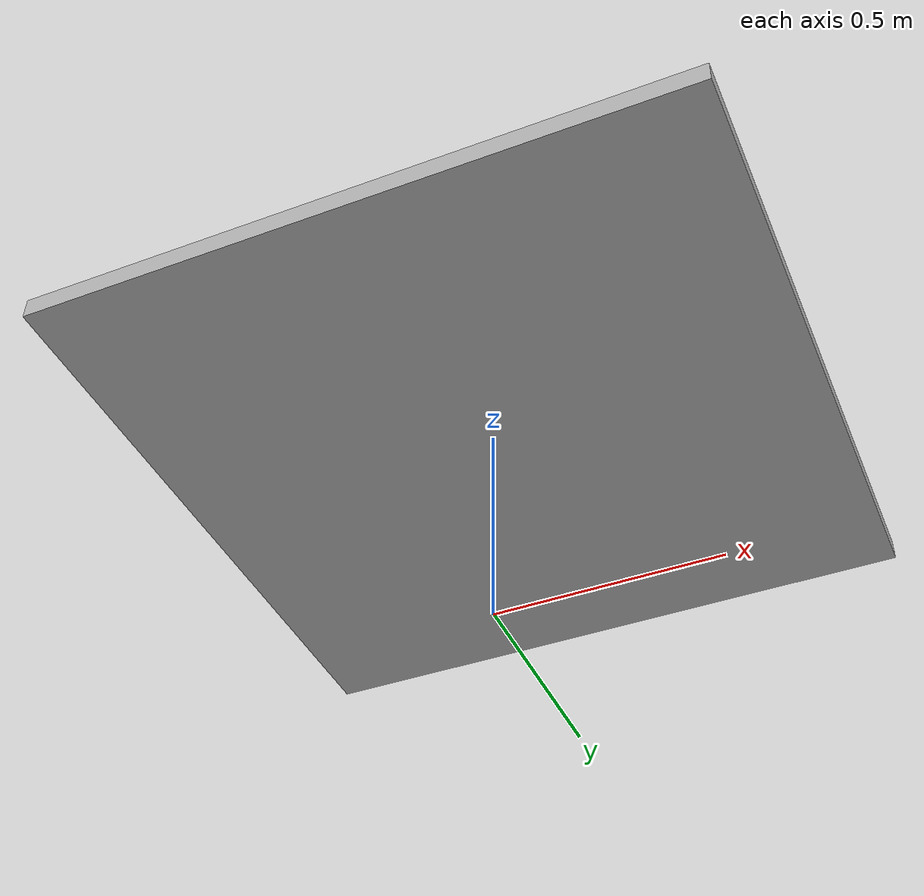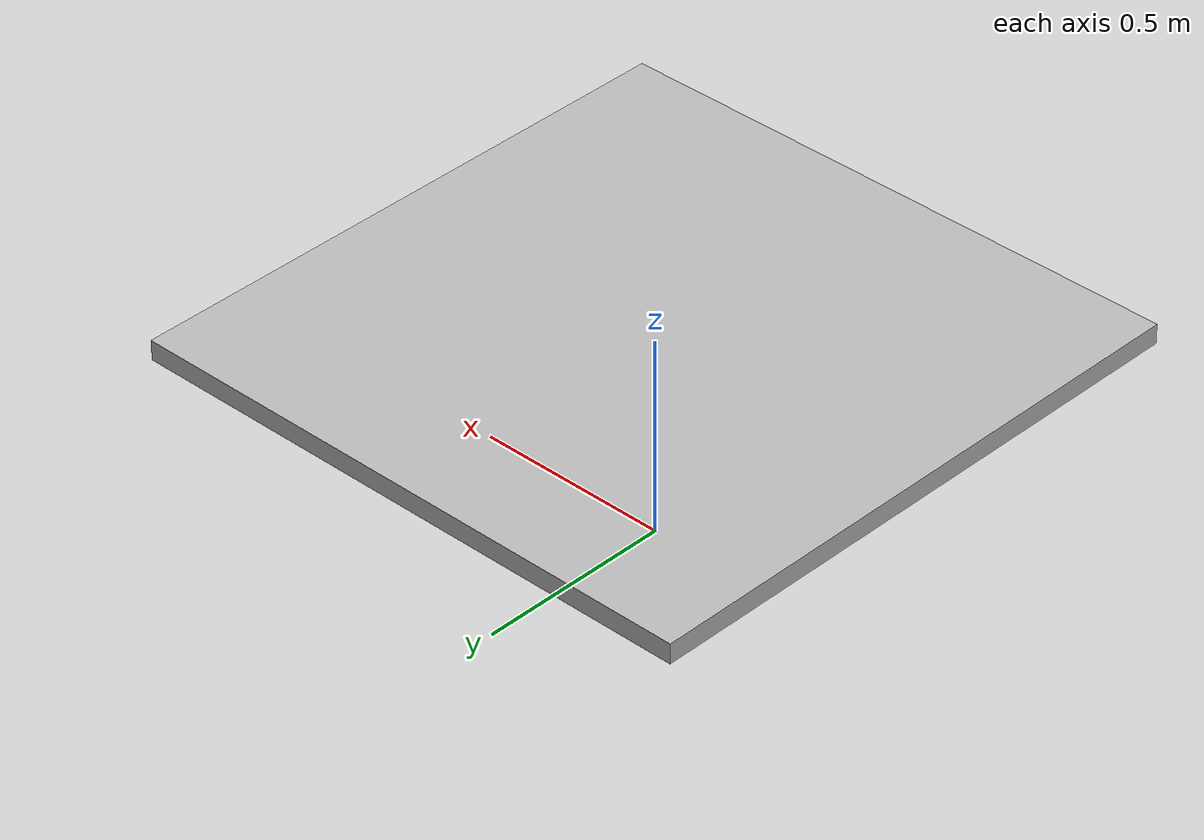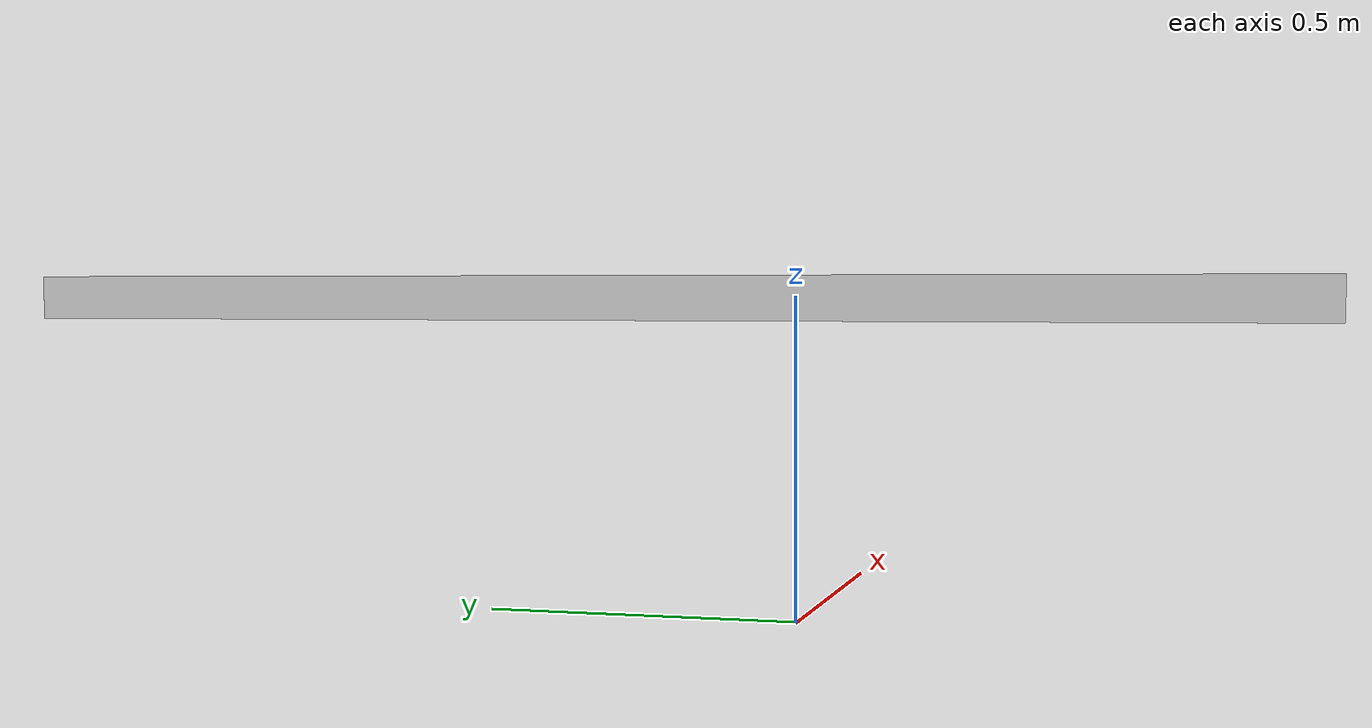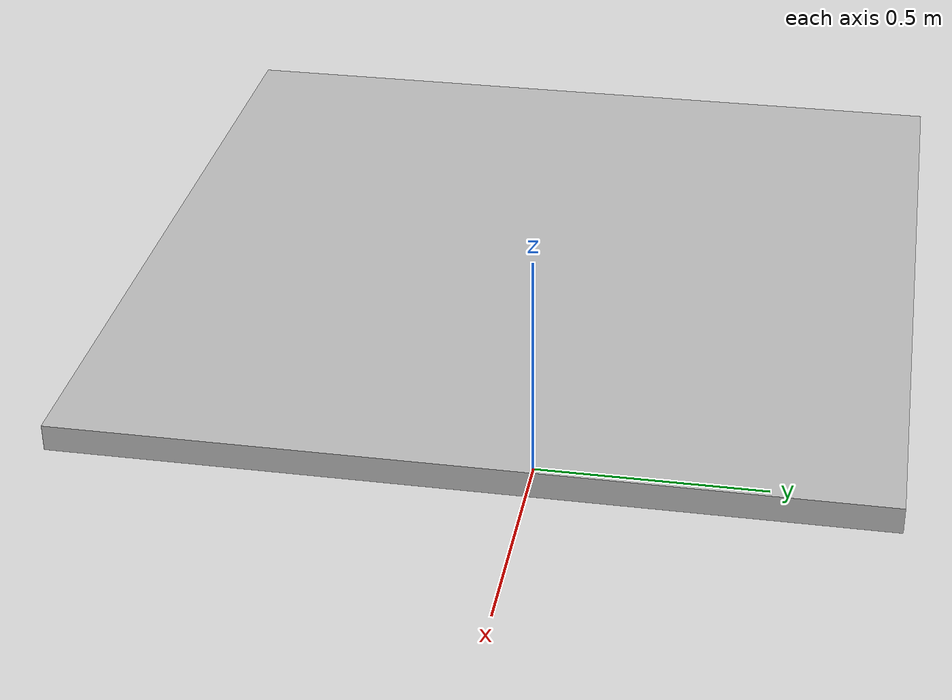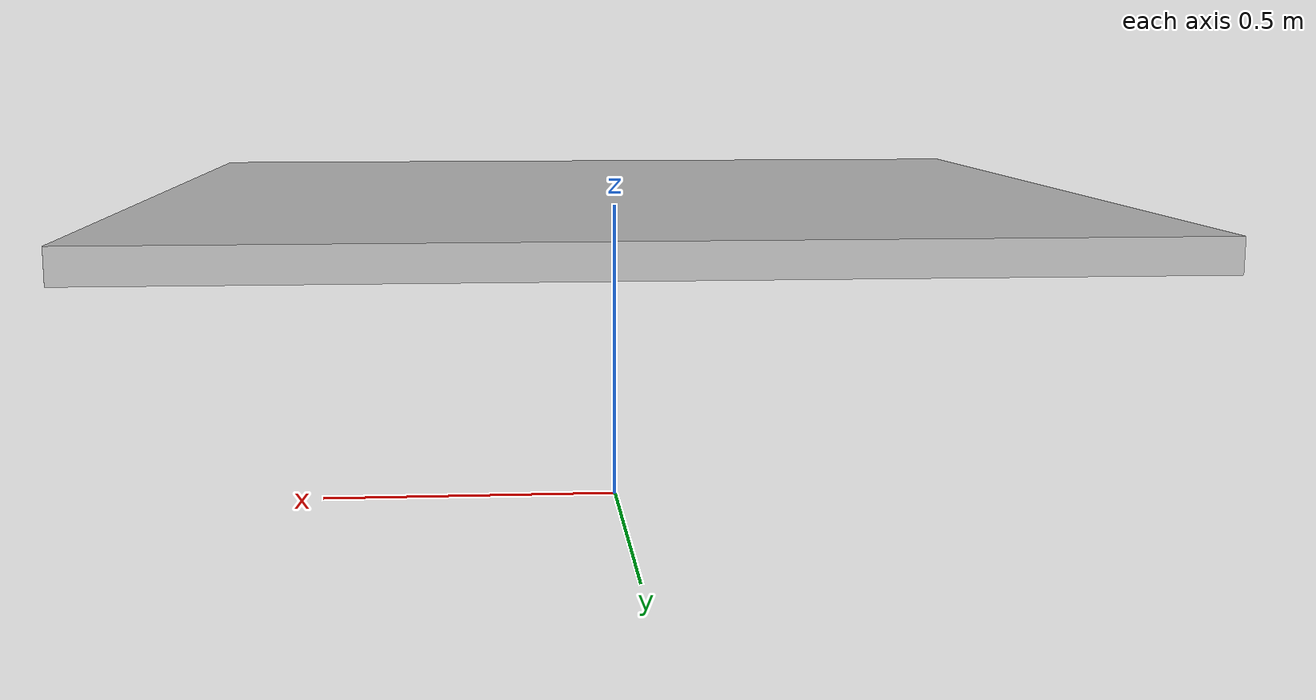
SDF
<?xml version="1.0" ?>
<sdf version="1.6">
  <model name="caixa_mesh">
    <static>true</static>
    <link name="caixa_link">
      <pose>0 0 0.5 0 0 0</pose>
      <collision name="caixa_collision">
        <geometry>
          <mesh>
            <uri>file:///home/lukn23/ros2_ws/src/iris_land/landpad/landpad.dae</uri>
          </mesh>
        </geometry>
      </collision>
      <visual name="caixa_visual">
        <geometry>
          <mesh>
            <uri>file:///home/lukn23/ros2_ws/src/iris_land/landpad/landpad.dae</uri>
          </mesh>
        </geometry>
      </visual>
    </link>
  </model>
</sdf>
